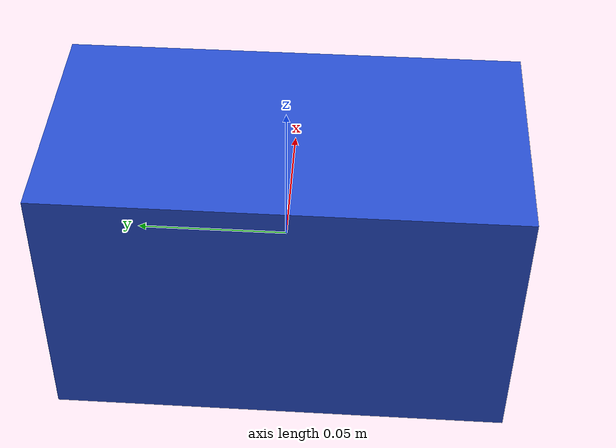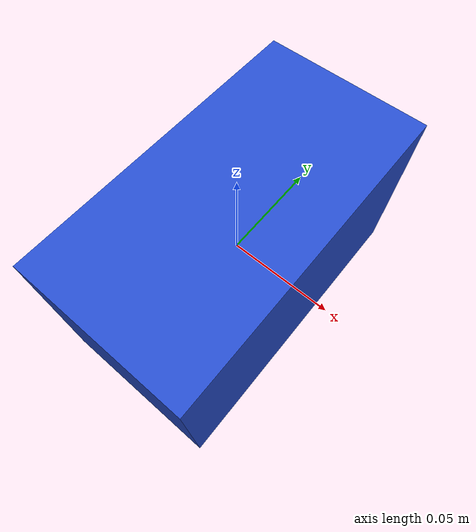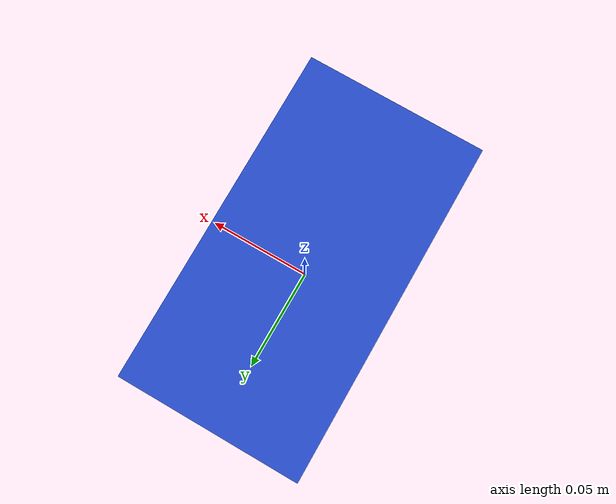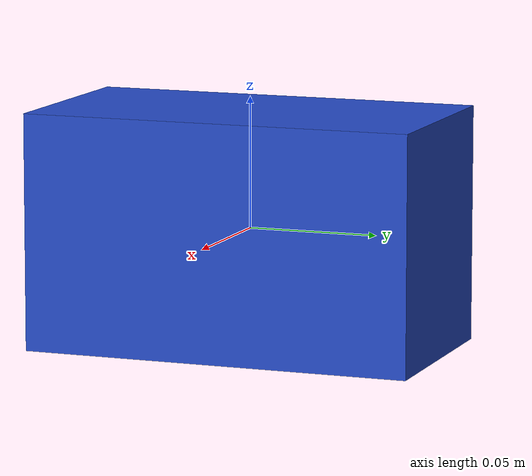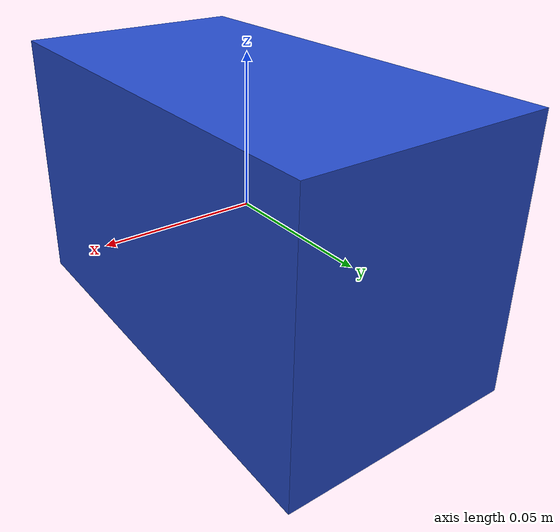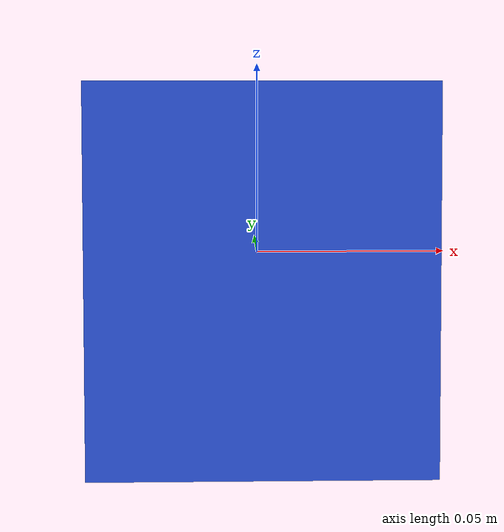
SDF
<?xml version='1.0'?>
<sdf version='1.6'>
  <model name='tall_insole'>
    <link name='link'>
      <inertial>
        <inertia>
          <ixx>0.005</ixx>
          <iyy>0.005</iyy>
          <izz>0.005</izz>
          <ixy>0</ixy>
          <ixz>0</ixz>
          <iyz>0</iyz>
        </inertia>
        <mass>0.2</mass>
      </inertial>
      <visual name='tall_insole_visual'>
        <pose frame=''>0 0 0 0 0 0</pose>
        <geometry>
          <box>
            <size>0.08 0.15 0.09</size>
          </box>
        </geometry>
        <material>
          <script>
            <uri>file://media/materials/scripts/gazebo.material</uri>
            <name>Gazebo/Blue</name>
          </script>
        </material>
      </visual>
      <collision name='tall_insole_collision'>
        <pose frame=''>0 0 0 0 0 0</pose>
        <geometry>
          <box>
            <size>0.08 0.15 0.09</size>
          </box>
        </geometry>
        <surface>
          <friction>
            <ode>
              <mu>20.6</mu>
              <mu2>20.6</mu2>
            </ode>
          </friction>
        </surface>
      </collision>
    </link>

    <static>0</static>
    <allow_auto_disable>1</allow_auto_disable>
  </model>
</sdf>
